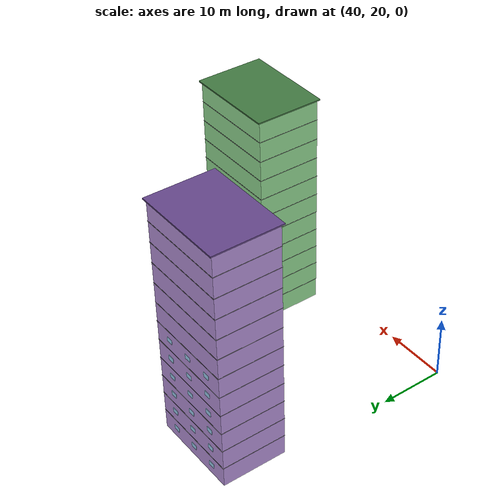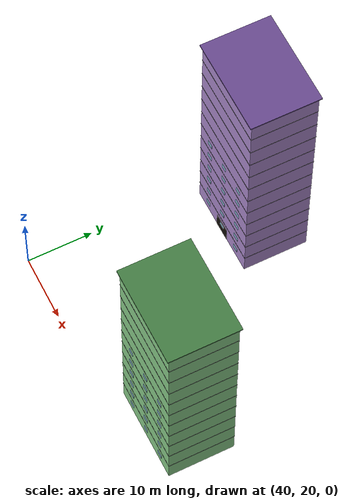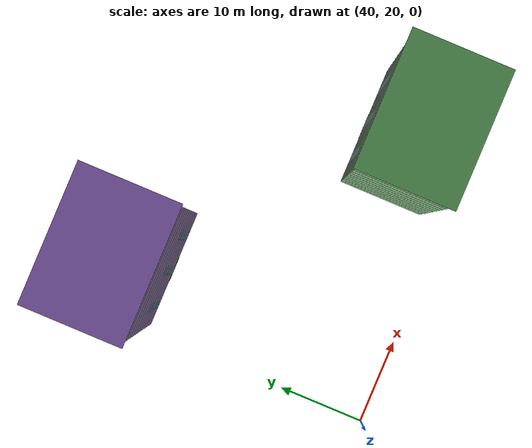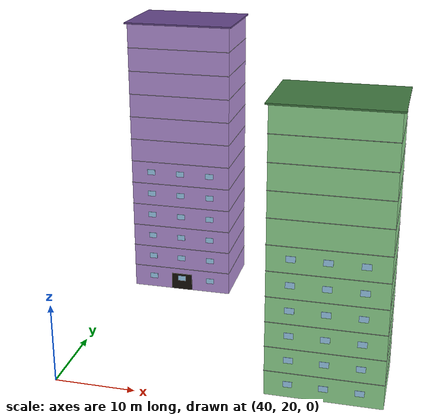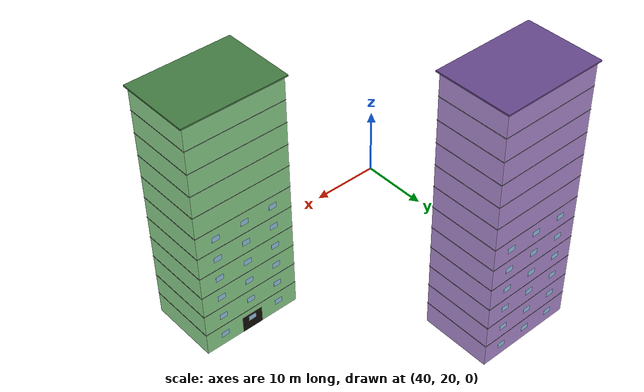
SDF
<sdf version="1.7">
 <world name="campus_regional">
  <model name="dormitory_2">
   <static>true</static>
   <pose>72.0 28.0 0 0 0 0</pose>
   <link name="body">
    <visual name="body">
     <pose>0 0 17.600 0 0 0</pose>
     <geometry><box><size>14.000 10.000 35.200</size></box></geometry>
     <material><ambient>0.580 0.860 0.580 1.000</ambient><diffuse>0.580 0.860 0.580 1.000</diffuse></material>
    </visual>
    <collision name="body_collision">
     <pose>0 0 17.600 0 0 0</pose>
     <geometry><box><size>14.000 10.000 35.200</size></box></geometry>
    </collision>
    <visual name="roof">
     <pose>0 0 35.300 0 0 0</pose>
     <geometry><box><size>14.600 10.600 0.200</size></box></geometry>
     <material><ambient>0.260 0.480 0.260 1.000</ambient><diffuse>0.260 0.480 0.260 1.000</diffuse></material>
    </visual>
    <visual name="floor_sep_n_1">
     <pose>0 5.018 3.200 0 0 0</pose>
     <geometry><box><size>14.100 0.035 0.060</size></box></geometry>
     <material><ambient>0.080 0.080 0.080 1.000</ambient><diffuse>0.080 0.080 0.080 1.000</diffuse></material>
    </visual>
    <visual name="floor_sep_s_1">
     <pose>0 -5.018 3.200 0 0 0</pose>
     <geometry><box><size>14.100 0.035 0.060</size></box></geometry>
     <material><ambient>0.080 0.080 0.080 1.000</ambient><diffuse>0.080 0.080 0.080 1.000</diffuse></material>
    </visual>
    <visual name="floor_sep_e_1">
     <pose>7.018 0 3.200 0 0 0</pose>
     <geometry><box><size>0.035 10.100 0.060</size></box></geometry>
     <material><ambient>0.080 0.080 0.080 1.000</ambient><diffuse>0.080 0.080 0.080 1.000</diffuse></material>
    </visual>
    <visual name="floor_sep_w_1">
     <pose>-7.018 0 3.200 0 0 0</pose>
     <geometry><box><size>0.035 10.100 0.060</size></box></geometry>
     <material><ambient>0.080 0.080 0.080 1.000</ambient><diffuse>0.080 0.080 0.080 1.000</diffuse></material>
    </visual>
    <visual name="floor_sep_n_2">
     <pose>0 5.018 6.400 0 0 0</pose>
     <geometry><box><size>14.100 0.035 0.060</size></box></geometry>
     <material><ambient>0.080 0.080 0.080 1.000</ambient><diffuse>0.080 0.080 0.080 1.000</diffuse></material>
    </visual>
    <visual name="floor_sep_s_2">
     <pose>0 -5.018 6.400 0 0 0</pose>
     <geometry><box><size>14.100 0.035 0.060</size></box></geometry>
     <material><ambient>0.080 0.080 0.080 1.000</ambient><diffuse>0.080 0.080 0.080 1.000</diffuse></material>
    </visual>
    <visual name="floor_sep_e_2">
     <pose>7.018 0 6.400 0 0 0</pose>
     <geometry><box><size>0.035 10.100 0.060</size></box></geometry>
     <material><ambient>0.080 0.080 0.080 1.000</ambient><diffuse>0.080 0.080 0.080 1.000</diffuse></material>
    </visual>
    <visual name="floor_sep_w_2">
     <pose>-7.018 0 6.400 0 0 0</pose>
     <geometry><box><size>0.035 10.100 0.060</size></box></geometry>
     <material><ambient>0.080 0.080 0.080 1.000</ambient><diffuse>0.080 0.080 0.080 1.000</diffuse></material>
    </visual>
    <visual name="floor_sep_n_3">
     <pose>0 5.018 9.600 0 0 0</pose>
     <geometry><box><size>14.100 0.035 0.060</size></box></geometry>
     <material><ambient>0.080 0.080 0.080 1.000</ambient><diffuse>0.080 0.080 0.080 1.000</diffuse></material>
    </visual>
    <visual name="floor_sep_s_3">
     <pose>0 -5.018 9.600 0 0 0</pose>
     <geometry><box><size>14.100 0.035 0.060</size></box></geometry>
     <material><ambient>0.080 0.080 0.080 1.000</ambient><diffuse>0.080 0.080 0.080 1.000</diffuse></material>
    </visual>
    <visual name="floor_sep_e_3">
     <pose>7.018 0 9.600 0 0 0</pose>
     <geometry><box><size>0.035 10.100 0.060</size></box></geometry>
     <material><ambient>0.080 0.080 0.080 1.000</ambient><diffuse>0.080 0.080 0.080 1.000</diffuse></material>
    </visual>
    <visual name="floor_sep_w_3">
     <pose>-7.018 0 9.600 0 0 0</pose>
     <geometry><box><size>0.035 10.100 0.060</size></box></geometry>
     <material><ambient>0.080 0.080 0.080 1.000</ambient><diffuse>0.080 0.080 0.080 1.000</diffuse></material>
    </visual>
    <visual name="floor_sep_n_4">
     <pose>0 5.018 12.800 0 0 0</pose>
     <geometry><box><size>14.100 0.035 0.060</size></box></geometry>
     <material><ambient>0.080 0.080 0.080 1.000</ambient><diffuse>0.080 0.080 0.080 1.000</diffuse></material>
    </visual>
    <visual name="floor_sep_s_4">
     <pose>0 -5.018 12.800 0 0 0</pose>
     <geometry><box><size>14.100 0.035 0.060</size></box></geometry>
     <material><ambient>0.080 0.080 0.080 1.000</ambient><diffuse>0.080 0.080 0.080 1.000</diffuse></material>
    </visual>
    <visual name="floor_sep_e_4">
     <pose>7.018 0 12.800 0 0 0</pose>
     <geometry><box><size>0.035 10.100 0.060</size></box></geometry>
     <material><ambient>0.080 0.080 0.080 1.000</ambient><diffuse>0.080 0.080 0.080 1.000</diffuse></material>
    </visual>
    <visual name="floor_sep_w_4">
     <pose>-7.018 0 12.800 0 0 0</pose>
     <geometry><box><size>0.035 10.100 0.060</size></box></geometry>
     <material><ambient>0.080 0.080 0.080 1.000</ambient><diffuse>0.080 0.080 0.080 1.000</diffuse></material>
    </visual>
    <visual name="floor_sep_n_5">
     <pose>0 5.018 16.000 0 0 0</pose>
     <geometry><box><size>14.100 0.035 0.060</size></box></geometry>
     <material><ambient>0.080 0.080 0.080 1.000</ambient><diffuse>0.080 0.080 0.080 1.000</diffuse></material>
    </visual>
    <visual name="floor_sep_s_5">
     <pose>0 -5.018 16.000 0 0 0</pose>
     <geometry><box><size>14.100 0.035 0.060</size></box></geometry>
     <material><ambient>0.080 0.080 0.080 1.000</ambient><diffuse>0.080 0.080 0.080 1.000</diffuse></material>
    </visual>
    <visual name="floor_sep_e_5">
     <pose>7.018 0 16.000 0 0 0</pose>
     <geometry><box><size>0.035 10.100 0.060</size></box></geometry>
     <material><ambient>0.080 0.080 0.080 1.000</ambient><diffuse>0.080 0.080 0.080 1.000</diffuse></material>
    </visual>
    <visual name="floor_sep_w_5">
     <pose>-7.018 0 16.000 0 0 0</pose>
     <geometry><box><size>0.035 10.100 0.060</size></box></geometry>
     <material><ambient>0.080 0.080 0.080 1.000</ambient><diffuse>0.080 0.080 0.080 1.000</diffuse></material>
    </visual>
    <visual name="floor_sep_n_6">
     <pose>0 5.018 19.200 0 0 0</pose>
     <geometry><box><size>14.100 0.035 0.060</size></box></geometry>
     <material><ambient>0.080 0.080 0.080 1.000</ambient><diffuse>0.080 0.080 0.080 1.000</diffuse></material>
    </visual>
    <visual name="floor_sep_s_6">
     <pose>0 -5.018 19.200 0 0 0</pose>
     <geometry><box><size>14.100 0.035 0.060</size></box></geometry>
     <material><ambient>0.080 0.080 0.080 1.000</ambient><diffuse>0.080 0.080 0.080 1.000</diffuse></material>
    </visual>
    <visual name="floor_sep_e_6">
     <pose>7.018 0 19.200 0 0 0</pose>
     <geometry><box><size>0.035 10.100 0.060</size></box></geometry>
     <material><ambient>0.080 0.080 0.080 1.000</ambient><diffuse>0.080 0.080 0.080 1.000</diffuse></material>
    </visual>
    <visual name="floor_sep_w_6">
     <pose>-7.018 0 19.200 0 0 0</pose>
     <geometry><box><size>0.035 10.100 0.060</size></box></geometry>
     <material><ambient>0.080 0.080 0.080 1.000</ambient><diffuse>0.080 0.080 0.080 1.000</diffuse></material>
    </visual>
    <visual name="floor_sep_n_7">
     <pose>0 5.018 22.400 0 0 0</pose>
     <geometry><box><size>14.100 0.035 0.060</size></box></geometry>
     <material><ambient>0.080 0.080 0.080 1.000</ambient><diffuse>0.080 0.080 0.080 1.000</diffuse></material>
    </visual>
    <visual name="floor_sep_s_7">
     <pose>0 -5.018 22.400 0 0 0</pose>
     <geometry><box><size>14.100 0.035 0.060</size></box></geometry>
     <material><ambient>0.080 0.080 0.080 1.000</ambient><diffuse>0.080 0.080 0.080 1.000</diffuse></material>
    </visual>
    <visual name="floor_sep_e_7">
     <pose>7.018 0 22.400 0 0 0</pose>
     <geometry><box><size>0.035 10.100 0.060</size></box></geometry>
     <material><ambient>0.080 0.080 0.080 1.000</ambient><diffuse>0.080 0.080 0.080 1.000</diffuse></material>
    </visual>
    <visual name="floor_sep_w_7">
     <pose>-7.018 0 22.400 0 0 0</pose>
     <geometry><box><size>0.035 10.100 0.060</size></box></geometry>
     <material><ambient>0.080 0.080 0.080 1.000</ambient><diffuse>0.080 0.080 0.080 1.000</diffuse></material>
    </visual>
    <visual name="floor_sep_n_8">
     <pose>0 5.018 25.600 0 0 0</pose>
     <geometry><box><size>14.100 0.035 0.060</size></box></geometry>
     <material><ambient>0.080 0.080 0.080 1.000</ambient><diffuse>0.080 0.080 0.080 1.000</diffuse></material>
    </visual>
    <visual name="floor_sep_s_8">
     <pose>0 -5.018 25.600 0 0 0</pose>
     <geometry><box><size>14.100 0.035 0.060</size></box></geometry>
     <material><ambient>0.080 0.080 0.080 1.000</ambient><diffuse>0.080 0.080 0.080 1.000</diffuse></material>
    </visual>
    <visual name="floor_sep_e_8">
     <pose>7.018 0 25.600 0 0 0</pose>
     <geometry><box><size>0.035 10.100 0.060</size></box></geometry>
     <material><ambient>0.080 0.080 0.080 1.000</ambient><diffuse>0.080 0.080 0.080 1.000</diffuse></material>
    </visual>
    <visual name="floor_sep_w_8">
     <pose>-7.018 0 25.600 0 0 0</pose>
     <geometry><box><size>0.035 10.100 0.060</size></box></geometry>
     <material><ambient>0.080 0.080 0.080 1.000</ambient><diffuse>0.080 0.080 0.080 1.000</diffuse></material>
    </visual>
    <visual name="floor_sep_n_9">
     <pose>0 5.018 28.800 0 0 0</pose>
     <geometry><box><size>14.100 0.035 0.060</size></box></geometry>
     <material><ambient>0.080 0.080 0.080 1.000</ambient><diffuse>0.080 0.080 0.080 1.000</diffuse></material>
    </visual>
    <visual name="floor_sep_s_9">
     <pose>0 -5.018 28.800 0 0 0</pose>
     <geometry><box><size>14.100 0.035 0.060</size></box></geometry>
     <material><ambient>0.080 0.080 0.080 1.000</ambient><diffuse>0.080 0.080 0.080 1.000</diffuse></material>
    </visual>
    <visual name="floor_sep_e_9">
     <pose>7.018 0 28.800 0 0 0</pose>
     <geometry><box><size>0.035 10.100 0.060</size></box></geometry>
     <material><ambient>0.080 0.080 0.080 1.000</ambient><diffuse>0.080 0.080 0.080 1.000</diffuse></material>
    </visual>
    <visual name="floor_sep_w_9">
     <pose>-7.018 0 28.800 0 0 0</pose>
     <geometry><box><size>0.035 10.100 0.060</size></box></geometry>
     <material><ambient>0.080 0.080 0.080 1.000</ambient><diffuse>0.080 0.080 0.080 1.000</diffuse></material>
    </visual>
    <visual name="floor_sep_n_10">
     <pose>0 5.018 32.000 0 0 0</pose>
     <geometry><box><size>14.100 0.035 0.060</size></box></geometry>
     <material><ambient>0.080 0.080 0.080 1.000</ambient><diffuse>0.080 0.080 0.080 1.000</diffuse></material>
    </visual>
    <visual name="floor_sep_s_10">
     <pose>0 -5.018 32.000 0 0 0</pose>
     <geometry><box><size>14.100 0.035 0.060</size></box></geometry>
     <material><ambient>0.080 0.080 0.080 1.000</ambient><diffuse>0.080 0.080 0.080 1.000</diffuse></material>
    </visual>
    <visual name="floor_sep_e_10">
     <pose>7.018 0 32.000 0 0 0</pose>
     <geometry><box><size>0.035 10.100 0.060</size></box></geometry>
     <material><ambient>0.080 0.080 0.080 1.000</ambient><diffuse>0.080 0.080 0.080 1.000</diffuse></material>
    </visual>
    <visual name="floor_sep_w_10">
     <pose>-7.018 0 32.000 0 0 0</pose>
     <geometry><box><size>0.035 10.100 0.060</size></box></geometry>
     <material><ambient>0.080 0.080 0.080 1.000</ambient><diffuse>0.080 0.080 0.080 1.000</diffuse></material>
    </visual>
    <visual name="front_door">
     <pose>0 5.012 1.2 0 0 0</pose>
     <geometry><box><size>3.000 0.050 2.400</size></box></geometry>
     <material><ambient>0.080 0.060 0.040 1.000</ambient><diffuse>0.080 0.060 0.040 1.000</diffuse></material>
    </visual>
    <visual name="win_n_1_-4.2">
     <pose>-4.200 5.020 1.700 0 0 0</pose>
     <geometry><box><size>1.100 0.035 0.750</size></box></geometry>
     <material><ambient>0.620 0.820 0.950 1.000</ambient><diffuse>0.620 0.820 0.950 1.000</diffuse></material>
    </visual>
    <visual name="win_s_1_-4.2">
     <pose>-4.200 -5.020 1.700 0 0 0</pose>
     <geometry><box><size>1.100 0.035 0.750</size></box></geometry>
     <material><ambient>0.620 0.820 0.950 1.000</ambient><diffuse>0.620 0.820 0.950 1.000</diffuse></material>
    </visual>
    <visual name="win_n_1_0.0">
     <pose>0.000 5.020 1.700 0 0 0</pose>
     <geometry><box><size>1.100 0.035 0.750</size></box></geometry>
     <material><ambient>0.620 0.820 0.950 1.000</ambient><diffuse>0.620 0.820 0.950 1.000</diffuse></material>
    </visual>
    <visual name="win_s_1_0.0">
     <pose>0.000 -5.020 1.700 0 0 0</pose>
     <geometry><box><size>1.100 0.035 0.750</size></box></geometry>
     <material><ambient>0.620 0.820 0.950 1.000</ambient><diffuse>0.620 0.820 0.950 1.000</diffuse></material>
    </visual>
    <visual name="win_n_1_4.2">
     <pose>4.200 5.020 1.700 0 0 0</pose>
     <geometry><box><size>1.100 0.035 0.750</size></box></geometry>
     <material><ambient>0.620 0.820 0.950 1.000</ambient><diffuse>0.620 0.820 0.950 1.000</diffuse></material>
    </visual>
    <visual name="win_s_1_4.2">
     <pose>4.200 -5.020 1.700 0 0 0</pose>
     <geometry><box><size>1.100 0.035 0.750</size></box></geometry>
     <material><ambient>0.620 0.820 0.950 1.000</ambient><diffuse>0.620 0.820 0.950 1.000</diffuse></material>
    </visual>
    <visual name="win_n_2_-4.2">
     <pose>-4.200 5.020 4.900 0 0 0</pose>
     <geometry><box><size>1.100 0.035 0.750</size></box></geometry>
     <material><ambient>0.620 0.820 0.950 1.000</ambient><diffuse>0.620 0.820 0.950 1.000</diffuse></material>
    </visual>
    <visual name="win_s_2_-4.2">
     <pose>-4.200 -5.020 4.900 0 0 0</pose>
     <geometry><box><size>1.100 0.035 0.750</size></box></geometry>
     <material><ambient>0.620 0.820 0.950 1.000</ambient><diffuse>0.620 0.820 0.950 1.000</diffuse></material>
    </visual>
    <visual name="win_n_2_0.0">
     <pose>0.000 5.020 4.900 0 0 0</pose>
     <geometry><box><size>1.100 0.035 0.750</size></box></geometry>
     <material><ambient>0.620 0.820 0.950 1.000</ambient><diffuse>0.620 0.820 0.950 1.000</diffuse></material>
    </visual>
    <visual name="win_s_2_0.0">
     <pose>0.000 -5.020 4.900 0 0 0</pose>
     <geometry><box><size>1.100 0.035 0.750</size></box></geometry>
     <material><ambient>0.620 0.820 0.950 1.000</ambient><diffuse>0.620 0.820 0.950 1.000</diffuse></material>
    </visual>
    <visual name="win_n_2_4.2">
     <pose>4.200 5.020 4.900 0 0 0</pose>
     <geometry><box><size>1.100 0.035 0.750</size></box></geometry>
     <material><ambient>0.620 0.820 0.950 1.000</ambient><diffuse>0.620 0.820 0.950 1.000</diffuse></material>
    </visual>
    <visual name="win_s_2_4.2">
     <pose>4.200 -5.020 4.900 0 0 0</pose>
     <geometry><box><size>1.100 0.035 0.750</size></box></geometry>
     <material><ambient>0.620 0.820 0.950 1.000</ambient><diffuse>0.620 0.820 0.950 1.000</diffuse></material>
    </visual>
    <visual name="win_n_3_-4.2">
     <pose>-4.200 5.020 8.100 0 0 0</pose>
     <geometry><box><size>1.100 0.035 0.750</size></box></geometry>
     <material><ambient>0.620 0.820 0.950 1.000</ambient><diffuse>0.620 0.820 0.950 1.000</diffuse></material>
    </visual>
    <visual name="win_s_3_-4.2">
     <pose>-4.200 -5.020 8.100 0 0 0</pose>
     <geometry><box><size>1.100 0.035 0.750</size></box></geometry>
     <material><ambient>0.620 0.820 0.950 1.000</ambient><diffuse>0.620 0.820 0.950 1.000</diffuse></material>
    </visual>
    <visual name="win_n_3_0.0">
     <pose>0.000 5.020 8.100 0 0 0</pose>
     <geometry><box><size>1.100 0.035 0.750</size></box></geometry>
     <material><ambient>0.620 0.820 0.950 1.000</ambient><diffuse>0.620 0.820 0.950 1.000</diffuse></material>
    </visual>
    <visual name="win_s_3_0.0">
     <pose>0.000 -5.020 8.100 0 0 0</pose>
     <geometry><box><size>1.100 0.035 0.750</size></box></geometry>
     <material><ambient>0.620 0.820 0.950 1.000</ambient><diffuse>0.620 0.820 0.950 1.000</diffuse></material>
    </visual>
    <visual name="win_n_3_4.2">
     <pose>4.200 5.020 8.100 0 0 0</pose>
     <geometry><box><size>1.100 0.035 0.750</size></box></geometry>
     <material><ambient>0.620 0.820 0.950 1.000</ambient><diffuse>0.620 0.820 0.950 1.000</diffuse></material>
    </visual>
    <visual name="win_s_3_4.2">
     <pose>4.200 -5.020 8.100 0 0 0</pose>
     <geometry><box><size>1.100 0.035 0.750</size></box></geometry>
     <material><ambient>0.620 0.820 0.950 1.000</ambient><diffuse>0.620 0.820 0.950 1.000</diffuse></material>
    </visual>
    <visual name="win_n_4_-4.2">
     <pose>-4.200 5.020 11.300 0 0 0</pose>
     <geometry><box><size>1.100 0.035 0.750</size></box></geometry>
     <material><ambient>0.620 0.820 0.950 1.000</ambient><diffuse>0.620 0.820 0.950 1.000</diffuse></material>
    </visual>
    <visual name="win_s_4_-4.2">
     <pose>-4.200 -5.020 11.300 0 0 0</pose>
     <geometry><box><size>1.100 0.035 0.750</size></box></geometry>
     <material><ambient>0.620 0.820 0.950 1.000</ambient><diffuse>0.620 0.820 0.950 1.000</diffuse></material>
    </visual>
    <visual name="win_n_4_0.0">
     <pose>0.000 5.020 11.300 0 0 0</pose>
     <geometry><box><size>1.100 0.035 0.750</size></box></geometry>
     <material><ambient>0.620 0.820 0.950 1.000</ambient><diffuse>0.620 0.820 0.950 1.000</diffuse></material>
    </visual>
    <visual name="win_s_4_0.0">
     <pose>0.000 -5.020 11.300 0 0 0</pose>
     <geometry><box><size>1.100 0.035 0.750</size></box></geometry>
     <material><ambient>0.620 0.820 0.950 1.000</ambient><diffuse>0.620 0.820 0.950 1.000</diffuse></material>
    </visual>
    <visual name="win_n_4_4.2">
     <pose>4.200 5.020 11.300 0 0 0</pose>
     <geometry><box><size>1.100 0.035 0.750</size></box></geometry>
     <material><ambient>0.620 0.820 0.950 1.000</ambient><diffuse>0.620 0.820 0.950 1.000</diffuse></material>
    </visual>
    <visual name="win_s_4_4.2">
     <pose>4.200 -5.020 11.300 0 0 0</pose>
     <geometry><box><size>1.100 0.035 0.750</size></box></geometry>
     <material><ambient>0.620 0.820 0.950 1.000</ambient><diffuse>0.620 0.820 0.950 1.000</diffuse></material>
    </visual>
    <visual name="win_n_5_-4.2">
     <pose>-4.200 5.020 14.500 0 0 0</pose>
     <geometry><box><size>1.100 0.035 0.750</size></box></geometry>
     <material><ambient>0.620 0.820 0.950 1.000</ambient><diffuse>0.620 0.820 0.950 1.000</diffuse></material>
    </visual>
    <visual name="win_s_5_-4.2">
     <pose>-4.200 -5.020 14.500 0 0 0</pose>
     <geometry><box><size>1.100 0.035 0.750</size></box></geometry>
     <material><ambient>0.620 0.820 0.950 1.000</ambient><diffuse>0.620 0.820 0.950 1.000</diffuse></material>
    </visual>
    <visual name="win_n_5_0.0">
     <pose>0.000 5.020 14.500 0 0 0</pose>
     <geometry><box><size>1.100 0.035 0.750</size></box></geometry>
     <material><ambient>0.620 0.820 0.950 1.000</ambient><diffuse>0.620 0.820 0.950 1.000</diffuse></material>
    </visual>
    <visual name="win_s_5_0.0">
     <pose>0.000 -5.020 14.500 0 0 0</pose>
     <geometry><box><size>1.100 0.035 0.750</size></box></geometry>
     <material><ambient>0.620 0.820 0.950 1.000</ambient><diffuse>0.620 0.820 0.950 1.000</diffuse></material>
    </visual>
    <visual name="win_n_5_4.2">
     <pose>4.200 5.020 14.500 0 0 0</pose>
     <geometry><box><size>1.100 0.035 0.750</size></box></geometry>
     <material><ambient>0.620 0.820 0.950 1.000</ambient><diffuse>0.620 0.820 0.950 1.000</diffuse></material>
    </visual>
    <visual name="win_s_5_4.2">
     <pose>4.200 -5.020 14.500 0 0 0</pose>
     <geometry><box><size>1.100 0.035 0.750</size></box></geometry>
     <material><ambient>0.620 0.820 0.950 1.000</ambient><diffuse>0.620 0.820 0.950 1.000</diffuse></material>
    </visual>
    <visual name="win_n_6_-4.2">
     <pose>-4.200 5.020 17.700 0 0 0</pose>
     <geometry><box><size>1.100 0.035 0.750</size></box></geometry>
     <material><ambient>0.620 0.820 0.950 1.000</ambient><diffuse>0.620 0.820 0.950 1.000</diffuse></material>
    </visual>
    <visual name="win_s_6_-4.2">
     <pose>-4.200 -5.020 17.700 0 0 0</pose>
     <geometry><box><size>1.100 0.035 0.750</size></box></geometry>
     <material><ambient>0.620 0.820 0.950 1.000</ambient><diffuse>0.620 0.820 0.950 1.000</diffuse></material>
    </visual>
    <visual name="win_n_6_0.0">
     <pose>0.000 5.020 17.700 0 0 0</pose>
     <geometry><box><size>1.100 0.035 0.750</size></box></geometry>
     <material><ambient>0.620 0.820 0.950 1.000</ambient><diffuse>0.620 0.820 0.950 1.000</diffuse></material>
    </visual>
    <visual name="win_s_6_0.0">
     <pose>0.000 -5.020 17.700 0 0 0</pose>
     <geometry><box><size>1.100 0.035 0.750</size></box></geometry>
     <material><ambient>0.620 0.820 0.950 1.000</ambient><diffuse>0.620 0.820 0.950 1.000</diffuse></material>
    </visual>
    <visual name="win_n_6_4.2">
     <pose>4.200 5.020 17.700 0 0 0</pose>
     <geometry><box><size>1.100 0.035 0.750</size></box></geometry>
     <material><ambient>0.620 0.820 0.950 1.000</ambient><diffuse>0.620 0.820 0.950 1.000</diffuse></material>
    </visual>
    <visual name="win_s_6_4.2">
     <pose>4.200 -5.020 17.700 0 0 0</pose>
     <geometry><box><size>1.100 0.035 0.750</size></box></geometry>
     <material><ambient>0.620 0.820 0.950 1.000</ambient><diffuse>0.620 0.820 0.950 1.000</diffuse></material>
    </visual>
   </link>
  </model>
  <model name="dormitory_3">
   <static>true</static>
   <pose>48.0 52.0 0 0 0 0</pose>
   <link name="body">
    <visual name="body">
     <pose>0 0 19.200 0 0 0</pose>
     <geometry><box><size>14.000 10.000 38.400</size></box></geometry>
     <material><ambient>0.720 0.580 0.860 1.000</ambient><diffuse>0.720 0.580 0.860 1.000</diffuse></material>
    </visual>
    <collision name="body_collision">
     <pose>0 0 19.200 0 0 0</pose>
     <geometry><box><size>14.000 10.000 38.400</size></box></geometry>
    </collision>
    <visual name="roof">
     <pose>0 0 38.500 0 0 0</pose>
     <geometry><box><size>14.600 10.600 0.200</size></box></geometry>
     <material><ambient>0.400 0.280 0.550 1.000</ambient><diffuse>0.400 0.280 0.550 1.000</diffuse></material>
    </visual>
    <visual name="floor_sep_n_1">
     <pose>0 5.018 3.200 0 0 0</pose>
     <geometry><box><size>14.100 0.035 0.060</size></box></geometry>
     <material><ambient>0.080 0.080 0.080 1.000</ambient><diffuse>0.080 0.080 0.080 1.000</diffuse></material>
    </visual>
    <visual name="floor_sep_s_1">
     <pose>0 -5.018 3.200 0 0 0</pose>
     <geometry><box><size>14.100 0.035 0.060</size></box></geometry>
     <material><ambient>0.080 0.080 0.080 1.000</ambient><diffuse>0.080 0.080 0.080 1.000</diffuse></material>
    </visual>
    <visual name="floor_sep_e_1">
     <pose>7.018 0 3.200 0 0 0</pose>
     <geometry><box><size>0.035 10.100 0.060</size></box></geometry>
     <material><ambient>0.080 0.080 0.080 1.000</ambient><diffuse>0.080 0.080 0.080 1.000</diffuse></material>
    </visual>
    <visual name="floor_sep_w_1">
     <pose>-7.018 0 3.200 0 0 0</pose>
     <geometry><box><size>0.035 10.100 0.060</size></box></geometry>
     <material><ambient>0.080 0.080 0.080 1.000</ambient><diffuse>0.080 0.080 0.080 1.000</diffuse></material>
    </visual>
    <visual name="floor_sep_n_2">
     <pose>0 5.018 6.400 0 0 0</pose>
     <geometry><box><size>14.100 0.035 0.060</size></box></geometry>
     <material><ambient>0.080 0.080 0.080 1.000</ambient><diffuse>0.080 0.080 0.080 1.000</diffuse></material>
    </visual>
    <visual name="floor_sep_s_2">
     <pose>0 -5.018 6.400 0 0 0</pose>
     <geometry><box><size>14.100 0.035 0.060</size></box></geometry>
     <material><ambient>0.080 0.080 0.080 1.000</ambient><diffuse>0.080 0.080 0.080 1.000</diffuse></material>
    </visual>
    <visual name="floor_sep_e_2">
     <pose>7.018 0 6.400 0 0 0</pose>
     <geometry><box><size>0.035 10.100 0.060</size></box></geometry>
     <material><ambient>0.080 0.080 0.080 1.000</ambient><diffuse>0.080 0.080 0.080 1.000</diffuse></material>
    </visual>
    <visual name="floor_sep_w_2">
     <pose>-7.018 0 6.400 0 0 0</pose>
     <geometry><box><size>0.035 10.100 0.060</size></box></geometry>
     <material><ambient>0.080 0.080 0.080 1.000</ambient><diffuse>0.080 0.080 0.080 1.000</diffuse></material>
    </visual>
    <visual name="floor_sep_n_3">
     <pose>0 5.018 9.600 0 0 0</pose>
     <geometry><box><size>14.100 0.035 0.060</size></box></geometry>
     <material><ambient>0.080 0.080 0.080 1.000</ambient><diffuse>0.080 0.080 0.080 1.000</diffuse></material>
    </visual>
    <visual name="floor_sep_s_3">
     <pose>0 -5.018 9.600 0 0 0</pose>
     <geometry><box><size>14.100 0.035 0.060</size></box></geometry>
     <material><ambient>0.080 0.080 0.080 1.000</ambient><diffuse>0.080 0.080 0.080 1.000</diffuse></material>
    </visual>
    <visual name="floor_sep_e_3">
     <pose>7.018 0 9.600 0 0 0</pose>
     <geometry><box><size>0.035 10.100 0.060</size></box></geometry>
     <material><ambient>0.080 0.080 0.080 1.000</ambient><diffuse>0.080 0.080 0.080 1.000</diffuse></material>
    </visual>
    <visual name="floor_sep_w_3">
     <pose>-7.018 0 9.600 0 0 0</pose>
     <geometry><box><size>0.035 10.100 0.060</size></box></geometry>
     <material><ambient>0.080 0.080 0.080 1.000</ambient><diffuse>0.080 0.080 0.080 1.000</diffuse></material>
    </visual>
    <visual name="floor_sep_n_4">
     <pose>0 5.018 12.800 0 0 0</pose>
     <geometry><box><size>14.100 0.035 0.060</size></box></geometry>
     <material><ambient>0.080 0.080 0.080 1.000</ambient><diffuse>0.080 0.080 0.080 1.000</diffuse></material>
    </visual>
    <visual name="floor_sep_s_4">
     <pose>0 -5.018 12.800 0 0 0</pose>
     <geometry><box><size>14.100 0.035 0.060</size></box></geometry>
     <material><ambient>0.080 0.080 0.080 1.000</ambient><diffuse>0.080 0.080 0.080 1.000</diffuse></material>
    </visual>
    <visual name="floor_sep_e_4">
     <pose>7.018 0 12.800 0 0 0</pose>
     <geometry><box><size>0.035 10.100 0.060</size></box></geometry>
     <material><ambient>0.080 0.080 0.080 1.000</ambient><diffuse>0.080 0.080 0.080 1.000</diffuse></material>
    </visual>
    <visual name="floor_sep_w_4">
     <pose>-7.018 0 12.800 0 0 0</pose>
     <geometry><box><size>0.035 10.100 0.060</size></box></geometry>
     <material><ambient>0.080 0.080 0.080 1.000</ambient><diffuse>0.080 0.080 0.080 1.000</diffuse></material>
    </visual>
    <visual name="floor_sep_n_5">
     <pose>0 5.018 16.000 0 0 0</pose>
     <geometry><box><size>14.100 0.035 0.060</size></box></geometry>
     <material><ambient>0.080 0.080 0.080 1.000</ambient><diffuse>0.080 0.080 0.080 1.000</diffuse></material>
    </visual>
    <visual name="floor_sep_s_5">
     <pose>0 -5.018 16.000 0 0 0</pose>
     <geometry><box><size>14.100 0.035 0.060</size></box></geometry>
     <material><ambient>0.080 0.080 0.080 1.000</ambient><diffuse>0.080 0.080 0.080 1.000</diffuse></material>
    </visual>
    <visual name="floor_sep_e_5">
     <pose>7.018 0 16.000 0 0 0</pose>
     <geometry><box><size>0.035 10.100 0.060</size></box></geometry>
     <material><ambient>0.080 0.080 0.080 1.000</ambient><diffuse>0.080 0.080 0.080 1.000</diffuse></material>
    </visual>
    <visual name="floor_sep_w_5">
     <pose>-7.018 0 16.000 0 0 0</pose>
     <geometry><box><size>0.035 10.100 0.060</size></box></geometry>
     <material><ambient>0.080 0.080 0.080 1.000</ambient><diffuse>0.080 0.080 0.080 1.000</diffuse></material>
    </visual>
    <visual name="floor_sep_n_6">
     <pose>0 5.018 19.200 0 0 0</pose>
     <geometry><box><size>14.100 0.035 0.060</size></box></geometry>
     <material><ambient>0.080 0.080 0.080 1.000</ambient><diffuse>0.080 0.080 0.080 1.000</diffuse></material>
    </visual>
    <visual name="floor_sep_s_6">
     <pose>0 -5.018 19.200 0 0 0</pose>
     <geometry><box><size>14.100 0.035 0.060</size></box></geometry>
     <material><ambient>0.080 0.080 0.080 1.000</ambient><diffuse>0.080 0.080 0.080 1.000</diffuse></material>
    </visual>
    <visual name="floor_sep_e_6">
     <pose>7.018 0 19.200 0 0 0</pose>
     <geometry><box><size>0.035 10.100 0.060</size></box></geometry>
     <material><ambient>0.080 0.080 0.080 1.000</ambient><diffuse>0.080 0.080 0.080 1.000</diffuse></material>
    </visual>
    <visual name="floor_sep_w_6">
     <pose>-7.018 0 19.200 0 0 0</pose>
     <geometry><box><size>0.035 10.100 0.060</size></box></geometry>
     <material><ambient>0.080 0.080 0.080 1.000</ambient><diffuse>0.080 0.080 0.080 1.000</diffuse></material>
    </visual>
    <visual name="floor_sep_n_7">
     <pose>0 5.018 22.400 0 0 0</pose>
     <geometry><box><size>14.100 0.035 0.060</size></box></geometry>
     <material><ambient>0.080 0.080 0.080 1.000</ambient><diffuse>0.080 0.080 0.080 1.000</diffuse></material>
    </visual>
    <visual name="floor_sep_s_7">
     <pose>0 -5.018 22.400 0 0 0</pose>
     <geometry><box><size>14.100 0.035 0.060</size></box></geometry>
     <material><ambient>0.080 0.080 0.080 1.000</ambient><diffuse>0.080 0.080 0.080 1.000</diffuse></material>
    </visual>
    <visual name="floor_sep_e_7">
     <pose>7.018 0 22.400 0 0 0</pose>
     <geometry><box><size>0.035 10.100 0.060</size></box></geometry>
     <material><ambient>0.080 0.080 0.080 1.000</ambient><diffuse>0.080 0.080 0.080 1.000</diffuse></material>
    </visual>
    <visual name="floor_sep_w_7">
     <pose>-7.018 0 22.400 0 0 0</pose>
     <geometry><box><size>0.035 10.100 0.060</size></box></geometry>
     <material><ambient>0.080 0.080 0.080 1.000</ambient><diffuse>0.080 0.080 0.080 1.000</diffuse></material>
    </visual>
    <visual name="floor_sep_n_8">
     <pose>0 5.018 25.600 0 0 0</pose>
     <geometry><box><size>14.100 0.035 0.060</size></box></geometry>
     <material><ambient>0.080 0.080 0.080 1.000</ambient><diffuse>0.080 0.080 0.080 1.000</diffuse></material>
    </visual>
    <visual name="floor_sep_s_8">
     <pose>0 -5.018 25.600 0 0 0</pose>
     <geometry><box><size>14.100 0.035 0.060</size></box></geometry>
     <material><ambient>0.080 0.080 0.080 1.000</ambient><diffuse>0.080 0.080 0.080 1.000</diffuse></material>
    </visual>
    <visual name="floor_sep_e_8">
     <pose>7.018 0 25.600 0 0 0</pose>
     <geometry><box><size>0.035 10.100 0.060</size></box></geometry>
     <material><ambient>0.080 0.080 0.080 1.000</ambient><diffuse>0.080 0.080 0.080 1.000</diffuse></material>
    </visual>
    <visual name="floor_sep_w_8">
     <pose>-7.018 0 25.600 0 0 0</pose>
     <geometry><box><size>0.035 10.100 0.060</size></box></geometry>
     <material><ambient>0.080 0.080 0.080 1.000</ambient><diffuse>0.080 0.080 0.080 1.000</diffuse></material>
    </visual>
    <visual name="floor_sep_n_9">
     <pose>0 5.018 28.800 0 0 0</pose>
     <geometry><box><size>14.100 0.035 0.060</size></box></geometry>
     <material><ambient>0.080 0.080 0.080 1.000</ambient><diffuse>0.080 0.080 0.080 1.000</diffuse></material>
    </visual>
    <visual name="floor_sep_s_9">
     <pose>0 -5.018 28.800 0 0 0</pose>
     <geometry><box><size>14.100 0.035 0.060</size></box></geometry>
     <material><ambient>0.080 0.080 0.080 1.000</ambient><diffuse>0.080 0.080 0.080 1.000</diffuse></material>
    </visual>
    <visual name="floor_sep_e_9">
     <pose>7.018 0 28.800 0 0 0</pose>
     <geometry><box><size>0.035 10.100 0.060</size></box></geometry>
     <material><ambient>0.080 0.080 0.080 1.000</ambient><diffuse>0.080 0.080 0.080 1.000</diffuse></material>
    </visual>
    <visual name="floor_sep_w_9">
     <pose>-7.018 0 28.800 0 0 0</pose>
     <geometry><box><size>0.035 10.100 0.060</size></box></geometry>
     <material><ambient>0.080 0.080 0.080 1.000</ambient><diffuse>0.080 0.080 0.080 1.000</diffuse></material>
    </visual>
    <visual name="floor_sep_n_10">
     <pose>0 5.018 32.000 0 0 0</pose>
     <geometry><box><size>14.100 0.035 0.060</size></box></geometry>
     <material><ambient>0.080 0.080 0.080 1.000</ambient><diffuse>0.080 0.080 0.080 1.000</diffuse></material>
    </visual>
    <visual name="floor_sep_s_10">
     <pose>0 -5.018 32.000 0 0 0</pose>
     <geometry><box><size>14.100 0.035 0.060</size></box></geometry>
     <material><ambient>0.080 0.080 0.080 1.000</ambient><diffuse>0.080 0.080 0.080 1.000</diffuse></material>
    </visual>
    <visual name="floor_sep_e_10">
     <pose>7.018 0 32.000 0 0 0</pose>
     <geometry><box><size>0.035 10.100 0.060</size></box></geometry>
     <material><ambient>0.080 0.080 0.080 1.000</ambient><diffuse>0.080 0.080 0.080 1.000</diffuse></material>
    </visual>
    <visual name="floor_sep_w_10">
     <pose>-7.018 0 32.000 0 0 0</pose>
     <geometry><box><size>0.035 10.100 0.060</size></box></geometry>
     <material><ambient>0.080 0.080 0.080 1.000</ambient><diffuse>0.080 0.080 0.080 1.000</diffuse></material>
    </visual>
    <visual name="floor_sep_n_11">
     <pose>0 5.018 35.200 0 0 0</pose>
     <geometry><box><size>14.100 0.035 0.060</size></box></geometry>
     <material><ambient>0.080 0.080 0.080 1.000</ambient><diffuse>0.080 0.080 0.080 1.000</diffuse></material>
    </visual>
    <visual name="floor_sep_s_11">
     <pose>0 -5.018 35.200 0 0 0</pose>
     <geometry><box><size>14.100 0.035 0.060</size></box></geometry>
     <material><ambient>0.080 0.080 0.080 1.000</ambient><diffuse>0.080 0.080 0.080 1.000</diffuse></material>
    </visual>
    <visual name="floor_sep_e_11">
     <pose>7.018 0 35.200 0 0 0</pose>
     <geometry><box><size>0.035 10.100 0.060</size></box></geometry>
     <material><ambient>0.080 0.080 0.080 1.000</ambient><diffuse>0.080 0.080 0.080 1.000</diffuse></material>
    </visual>
    <visual name="floor_sep_w_11">
     <pose>-7.018 0 35.200 0 0 0</pose>
     <geometry><box><size>0.035 10.100 0.060</size></box></geometry>
     <material><ambient>0.080 0.080 0.080 1.000</ambient><diffuse>0.080 0.080 0.080 1.000</diffuse></material>
    </visual>
    <visual name="front_door">
     <pose>0 -5.012 1.2 0 0 0</pose>
     <geometry><box><size>3.000 0.050 2.400</size></box></geometry>
     <material><ambient>0.080 0.060 0.040 1.000</ambient><diffuse>0.080 0.060 0.040 1.000</diffuse></material>
    </visual>
    <visual name="win_n_1_-4.2">
     <pose>-4.200 5.020 1.700 0 0 0</pose>
     <geometry><box><size>1.100 0.035 0.750</size></box></geometry>
     <material><ambient>0.620 0.820 0.950 1.000</ambient><diffuse>0.620 0.820 0.950 1.000</diffuse></material>
    </visual>
    <visual name="win_s_1_-4.2">
     <pose>-4.200 -5.020 1.700 0 0 0</pose>
     <geometry><box><size>1.100 0.035 0.750</size></box></geometry>
     <material><ambient>0.620 0.820 0.950 1.000</ambient><diffuse>0.620 0.820 0.950 1.000</diffuse></material>
    </visual>
    <visual name="win_n_1_0.0">
     <pose>0.000 5.020 1.700 0 0 0</pose>
     <geometry><box><size>1.100 0.035 0.750</size></box></geometry>
     <material><ambient>0.620 0.820 0.950 1.000</ambient><diffuse>0.620 0.820 0.950 1.000</diffuse></material>
    </visual>
    <visual name="win_s_1_0.0">
     <pose>0.000 -5.020 1.700 0 0 0</pose>
     <geometry><box><size>1.100 0.035 0.750</size></box></geometry>
     <material><ambient>0.620 0.820 0.950 1.000</ambient><diffuse>0.620 0.820 0.950 1.000</diffuse></material>
    </visual>
    <visual name="win_n_1_4.2">
     <pose>4.200 5.020 1.700 0 0 0</pose>
     <geometry><box><size>1.100 0.035 0.750</size></box></geometry>
     <material><ambient>0.620 0.820 0.950 1.000</ambient><diffuse>0.620 0.820 0.950 1.000</diffuse></material>
    </visual>
    <visual name="win_s_1_4.2">
     <pose>4.200 -5.020 1.700 0 0 0</pose>
     <geometry><box><size>1.100 0.035 0.750</size></box></geometry>
     <material><ambient>0.620 0.820 0.950 1.000</ambient><diffuse>0.620 0.820 0.950 1.000</diffuse></material>
    </visual>
    <visual name="win_n_2_-4.2">
     <pose>-4.200 5.020 4.900 0 0 0</pose>
     <geometry><box><size>1.100 0.035 0.750</size></box></geometry>
     <material><ambient>0.620 0.820 0.950 1.000</ambient><diffuse>0.620 0.820 0.950 1.000</diffuse></material>
    </visual>
    <visual name="win_s_2_-4.2">
     <pose>-4.200 -5.020 4.900 0 0 0</pose>
     <geometry><box><size>1.100 0.035 0.750</size></box></geometry>
     <material><ambient>0.620 0.820 0.950 1.000</ambient><diffuse>0.620 0.820 0.950 1.000</diffuse></material>
    </visual>
    <visual name="win_n_2_0.0">
     <pose>0.000 5.020 4.900 0 0 0</pose>
     <geometry><box><size>1.100 0.035 0.750</size></box></geometry>
     <material><ambient>0.620 0.820 0.950 1.000</ambient><diffuse>0.620 0.820 0.950 1.000</diffuse></material>
    </visual>
    <visual name="win_s_2_0.0">
     <pose>0.000 -5.020 4.900 0 0 0</pose>
     <geometry><box><size>1.100 0.035 0.750</size></box></geometry>
     <material><ambient>0.620 0.820 0.950 1.000</ambient><diffuse>0.620 0.820 0.950 1.000</diffuse></material>
    </visual>
    <visual name="win_n_2_4.2">
     <pose>4.200 5.020 4.900 0 0 0</pose>
     <geometry><box><size>1.100 0.035 0.750</size></box></geometry>
     <material><ambient>0.620 0.820 0.950 1.000</ambient><diffuse>0.620 0.820 0.950 1.000</diffuse></material>
    </visual>
    <visual name="win_s_2_4.2">
     <pose>4.200 -5.020 4.900 0 0 0</pose>
     <geometry><box><size>1.100 0.035 0.750</size></box></geometry>
     <material><ambient>0.620 0.820 0.950 1.000</ambient><diffuse>0.620 0.820 0.950 1.000</diffuse></material>
    </visual>
    <visual name="win_n_3_-4.2">
     <pose>-4.200 5.020 8.100 0 0 0</pose>
     <geometry><box><size>1.100 0.035 0.750</size></box></geometry>
     <material><ambient>0.620 0.820 0.950 1.000</ambient><diffuse>0.620 0.820 0.950 1.000</diffuse></material>
    </visual>
    <visual name="win_s_3_-4.2">
     <pose>-4.200 -5.020 8.100 0 0 0</pose>
     <geometry><box><size>1.100 0.035 0.750</size></box></geometry>
     <material><ambient>0.620 0.820 0.950 1.000</ambient><diffuse>0.620 0.820 0.950 1.000</diffuse></material>
    </visual>
    <visual name="win_n_3_0.0">
     <pose>0.000 5.020 8.100 0 0 0</pose>
     <geometry><box><size>1.100 0.035 0.750</size></box></geometry>
     <material><ambient>0.620 0.820 0.950 1.000</ambient><diffuse>0.620 0.820 0.950 1.000</diffuse></material>
    </visual>
    <visual name="win_s_3_0.0">
     <pose>0.000 -5.020 8.100 0 0 0</pose>
     <geometry><box><size>1.100 0.035 0.750</size></box></geometry>
     <material><ambient>0.620 0.820 0.950 1.000</ambient><diffuse>0.620 0.820 0.950 1.000</diffuse></material>
    </visual>
    <visual name="win_n_3_4.2">
     <pose>4.200 5.020 8.100 0 0 0</pose>
     <geometry><box><size>1.100 0.035 0.750</size></box></geometry>
     <material><ambient>0.620 0.820 0.950 1.000</ambient><diffuse>0.620 0.820 0.950 1.000</diffuse></material>
    </visual>
    <visual name="win_s_3_4.2">
     <pose>4.200 -5.020 8.100 0 0 0</pose>
     <geometry><box><size>1.100 0.035 0.750</size></box></geometry>
     <material><ambient>0.620 0.820 0.950 1.000</ambient><diffuse>0.620 0.820 0.950 1.000</diffuse></material>
    </visual>
    <visual name="win_n_4_-4.2">
     <pose>-4.200 5.020 11.300 0 0 0</pose>
     <geometry><box><size>1.100 0.035 0.750</size></box></geometry>
     <material><ambient>0.620 0.820 0.950 1.000</ambient><diffuse>0.620 0.820 0.950 1.000</diffuse></material>
    </visual>
    <visual name="win_s_4_-4.2">
     <pose>-4.200 -5.020 11.300 0 0 0</pose>
     <geometry><box><size>1.100 0.035 0.750</size></box></geometry>
     <material><ambient>0.620 0.820 0.950 1.000</ambient><diffuse>0.620 0.820 0.950 1.000</diffuse></material>
    </visual>
    <visual name="win_n_4_0.0">
     <pose>0.000 5.020 11.300 0 0 0</pose>
     <geometry><box><size>1.100 0.035 0.750</size></box></geometry>
     <material><ambient>0.620 0.820 0.950 1.000</ambient><diffuse>0.620 0.820 0.950 1.000</diffuse></material>
    </visual>
    <visual name="win_s_4_0.0">
     <pose>0.000 -5.020 11.300 0 0 0</pose>
     <geometry><box><size>1.100 0.035 0.750</size></box></geometry>
     <material><ambient>0.620 0.820 0.950 1.000</ambient><diffuse>0.620 0.820 0.950 1.000</diffuse></material>
    </visual>
    <visual name="win_n_4_4.2">
     <pose>4.200 5.020 11.300 0 0 0</pose>
     <geometry><box><size>1.100 0.035 0.750</size></box></geometry>
     <material><ambient>0.620 0.820 0.950 1.000</ambient><diffuse>0.620 0.820 0.950 1.000</diffuse></material>
    </visual>
    <visual name="win_s_4_4.2">
     <pose>4.200 -5.020 11.300 0 0 0</pose>
     <geometry><box><size>1.100 0.035 0.750</size></box></geometry>
     <material><ambient>0.620 0.820 0.950 1.000</ambient><diffuse>0.620 0.820 0.950 1.000</diffuse></material>
    </visual>
    <visual name="win_n_5_-4.2">
     <pose>-4.200 5.020 14.500 0 0 0</pose>
     <geometry><box><size>1.100 0.035 0.750</size></box></geometry>
     <material><ambient>0.620 0.820 0.950 1.000</ambient><diffuse>0.620 0.820 0.950 1.000</diffuse></material>
    </visual>
    <visual name="win_s_5_-4.2">
     <pose>-4.200 -5.020 14.500 0 0 0</pose>
     <geometry><box><size>1.100 0.035 0.750</size></box></geometry>
     <material><ambient>0.620 0.820 0.950 1.000</ambient><diffuse>0.620 0.820 0.950 1.000</diffuse></material>
    </visual>
    <visual name="win_n_5_0.0">
     <pose>0.000 5.020 14.500 0 0 0</pose>
     <geometry><box><size>1.100 0.035 0.750</size></box></geometry>
     <material><ambient>0.620 0.820 0.950 1.000</ambient><diffuse>0.620 0.820 0.950 1.000</diffuse></material>
    </visual>
    <visual name="win_s_5_0.0">
     <pose>0.000 -5.020 14.500 0 0 0</pose>
     <geometry><box><size>1.100 0.035 0.750</size></box></geometry>
     <material><ambient>0.620 0.820 0.950 1.000</ambient><diffuse>0.620 0.820 0.950 1.000</diffuse></material>
    </visual>
    <visual name="win_n_5_4.2">
     <pose>4.200 5.020 14.500 0 0 0</pose>
     <geometry><box><size>1.100 0.035 0.750</size></box></geometry>
     <material><ambient>0.620 0.820 0.950 1.000</ambient><diffuse>0.620 0.820 0.950 1.000</diffuse></material>
    </visual>
    <visual name="win_s_5_4.2">
     <pose>4.200 -5.020 14.500 0 0 0</pose>
     <geometry><box><size>1.100 0.035 0.750</size></box></geometry>
     <material><ambient>0.620 0.820 0.950 1.000</ambient><diffuse>0.620 0.820 0.950 1.000</diffuse></material>
    </visual>
    <visual name="win_n_6_-4.2">
     <pose>-4.200 5.020 17.700 0 0 0</pose>
     <geometry><box><size>1.100 0.035 0.750</size></box></geometry>
     <material><ambient>0.620 0.820 0.950 1.000</ambient><diffuse>0.620 0.820 0.950 1.000</diffuse></material>
    </visual>
    <visual name="win_s_6_-4.2">
     <pose>-4.200 -5.020 17.700 0 0 0</pose>
     <geometry><box><size>1.100 0.035 0.750</size></box></geometry>
     <material><ambient>0.620 0.820 0.950 1.000</ambient><diffuse>0.620 0.820 0.950 1.000</diffuse></material>
    </visual>
    <visual name="win_n_6_0.0">
     <pose>0.000 5.020 17.700 0 0 0</pose>
     <geometry><box><size>1.100 0.035 0.750</size></box></geometry>
     <material><ambient>0.620 0.820 0.950 1.000</ambient><diffuse>0.620 0.820 0.950 1.000</diffuse></material>
    </visual>
    <visual name="win_s_6_0.0">
     <pose>0.000 -5.020 17.700 0 0 0</pose>
     <geometry><box><size>1.100 0.035 0.750</size></box></geometry>
     <material><ambient>0.620 0.820 0.950 1.000</ambient><diffuse>0.620 0.820 0.950 1.000</diffuse></material>
    </visual>
    <visual name="win_n_6_4.2">
     <pose>4.200 5.020 17.700 0 0 0</pose>
     <geometry><box><size>1.100 0.035 0.750</size></box></geometry>
     <material><ambient>0.620 0.820 0.950 1.000</ambient><diffuse>0.620 0.820 0.950 1.000</diffuse></material>
    </visual>
    <visual name="win_s_6_4.2">
     <pose>4.200 -5.020 17.700 0 0 0</pose>
     <geometry><box><size>1.100 0.035 0.750</size></box></geometry>
     <material><ambient>0.620 0.820 0.950 1.000</ambient><diffuse>0.620 0.820 0.950 1.000</diffuse></material>
    </visual>
   </link>
  </model>
 </world>
</sdf>
